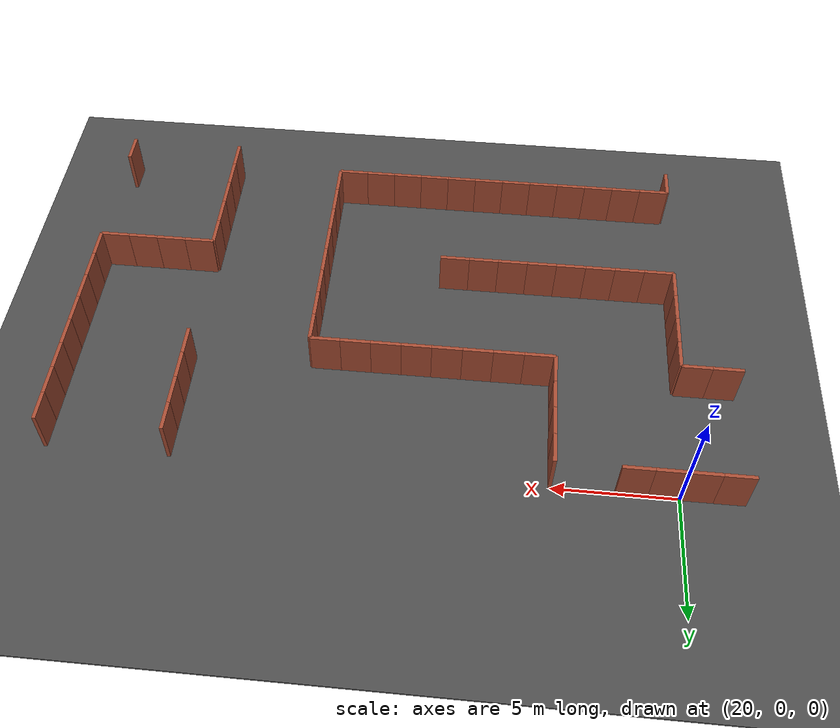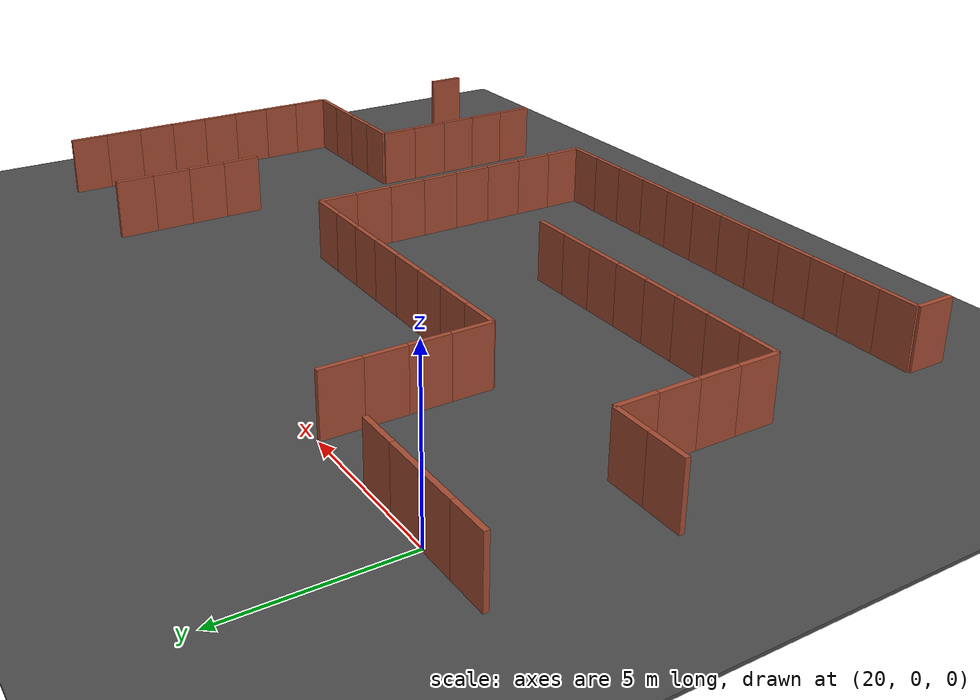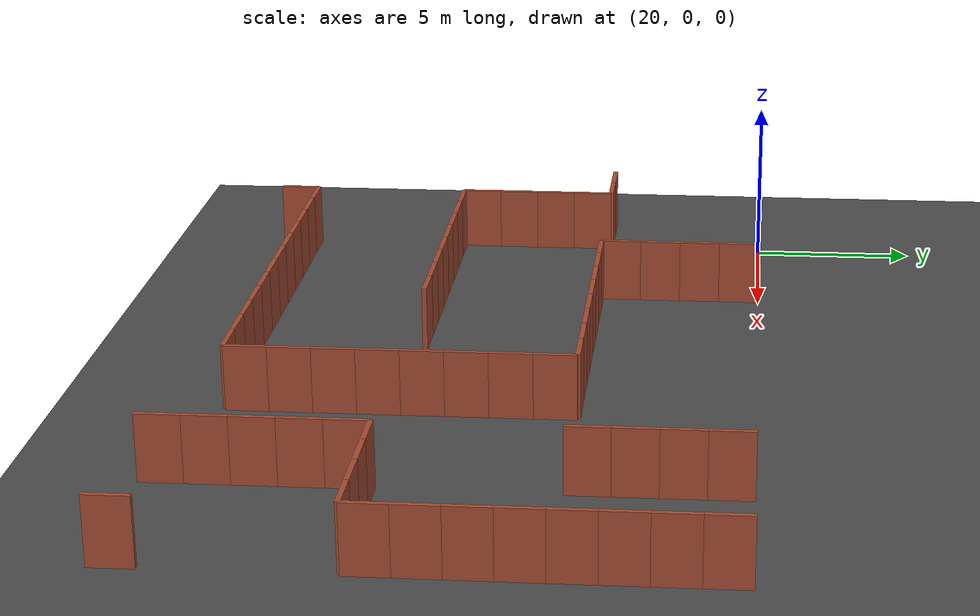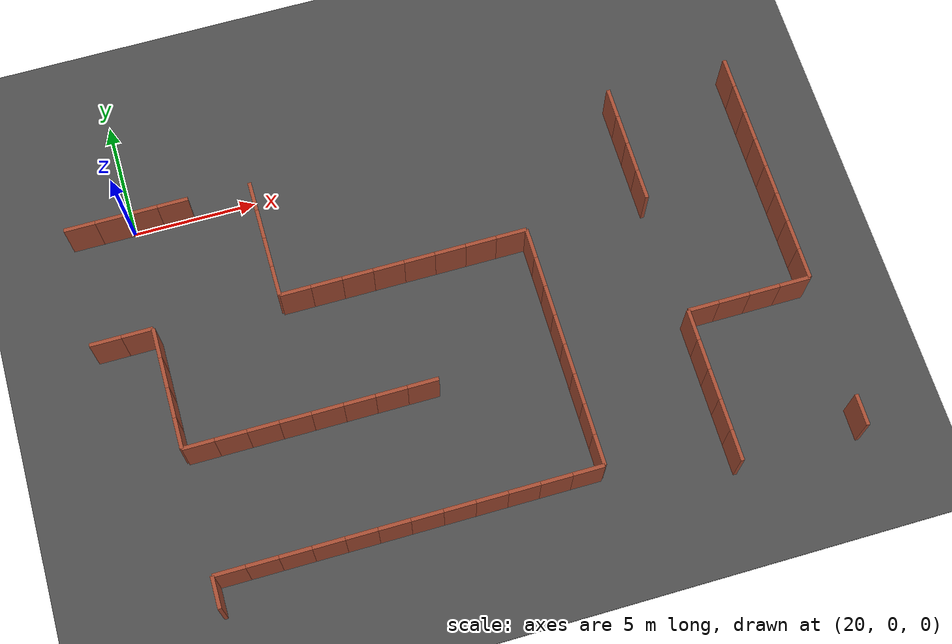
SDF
<sdf version="1.6">
 <world name="default">
  <model name="ground_plane">
   <static>1</static>
   <link name="link">
    <collision name="collision">
     <geometry><plane><normal>0 0 1</normal><size>100 100</size></plane></geometry>
     <surface><friction><ode><mu>100</mu><mu2>50</mu2></ode></friction></surface>
    </collision>
    <visual name="visual">
     <cast_shadows>0</cast_shadows>
     <geometry><plane><normal>0 0 1</normal><size>100 100</size></plane></geometry>
     <material>
      <script><uri>file://media/materials/scripts/gazebo.material</uri><name>Gazebo/Grey</name></script>
     </material>
    </visual>
   </link>
  </model>
  <model name="asphalt_plane">
   <static>1</static>
   <link name="link">
    <collision name="collision"><geometry><box><size>100 100 0.1</size></box></geometry></collision>
    <visual name="visual">
     <cast_shadows>0</cast_shadows>
     <geometry><box><size>100 100 0.1</size></box></geometry>
     <material>
      <script>
       <uri>model://asphalt_plane/materials/scripts</uri>
       <uri>model://asphalt_plane/materials/textures</uri>
       <name>vrc/asphalt</name>
      </script>
     </material>
    </visual>
   </link>
  </model>
  <model name="brick_wall_27_18_vertical1">
   <pose>18.125 -5 0 0 -0 0</pose>
   <link name="Wall_0">
    <collision name="Wall_0_Collision">
     <geometry><box><size>1.25 0.15 2</size></box></geometry>
     <pose>0 0 1 0 -0 0</pose>
    </collision>
    <visual name="Wall_0_Visual">
     <pose>0 0 1 0 -0 0</pose>
     <geometry><box><size>1.25 0.15 2</size></box></geometry>
     <material>
      <script><uri>file://media/materials/scripts/gazebo.material</uri><name>Gazebo/Bricks</name></script>
      <ambient>1 1 1 1</ambient>
     </material>
     <meta><layer>0</layer></meta>
    </visual>
   </link>
   <static>1</static>
  </model>
  <model name="brick_wall_27_20_vertical1">
   <pose>18.125 0 0 0 -0 0</pose>
   <link name="Wall_0">
    <collision name="Wall_0_Collision">
     <geometry><box><size>1.25 0.15 2</size></box></geometry>
     <pose>0 0 1 0 -0 0</pose>
    </collision>
    <visual name="Wall_0_Visual">
     <pose>0 0 1 0 -0 0</pose>
     <geometry><box><size>1.25 0.15 2</size></box></geometry>
     <material>
      <script><uri>file://media/materials/scripts/gazebo.material</uri><name>Gazebo/Bricks</name></script>
      <ambient>1 1 1 1</ambient>
     </material>
     <meta><layer>0</layer></meta>
    </visual>
   </link>
   <static>1</static>
  </model>
  <model name="brick_wall_28_14_vertical1">
   <pose>20.625 -15 0 0 -0 0</pose>
   <link name="Wall_0">
    <collision name="Wall_0_Collision">
     <geometry><box><size>1.25 0.15 2</size></box></geometry>
     <pose>0 0 1 0 -0 0</pose>
    </collision>
    <visual name="Wall_0_Visual">
     <pose>0 0 1 0 -0 0</pose>
     <geometry><box><size>1.25 0.15 2</size></box></geometry>
     <material>
      <script><uri>file://media/materials/scripts/gazebo.material</uri><name>Gazebo/Bricks</name></script>
      <ambient>1 1 1 1</ambient>
     </material>
     <meta><layer>0</layer></meta>
    </visual>
   </link>
   <static>1</static>
  </model>
  <model name="brick_wall_28_14_horizontal2">
   <pose>20 -15.625 0 0 -0 1.5708</pose>
   <link name="Wall_0">
    <collision name="Wall_0_Collision">
     <geometry><box><size>1.25 0.15 2</size></box></geometry>
     <pose>0 0 1 0 -0 0</pose>
    </collision>
    <visual name="Wall_0_Visual">
     <pose>0 0 1 0 -0 0</pose>
     <geometry><box><size>1.25 0.15 2</size></box></geometry>
     <material>
      <script><uri>file://media/materials/scripts/gazebo.material</uri><name>Gazebo/Bricks</name></script>
      <ambient>1 1 1 1</ambient>
     </material>
     <meta><layer>0</layer></meta>
    </visual>
   </link>
   <static>1</static>
  </model>
  <model name="brick_wall_28_16_vertical1">
   <pose>20.625 -10 0 0 -0 0</pose>
   <link name="Wall_0">
    <collision name="Wall_0_Collision">
     <geometry><box><size>1.25 0.15 2</size></box></geometry>
     <pose>0 0 1 0 -0 0</pose>
    </collision>
    <visual name="Wall_0_Visual">
     <pose>0 0 1 0 -0 0</pose>
     <geometry><box><size>1.25 0.15 2</size></box></geometry>
     <material>
      <script><uri>file://media/materials/scripts/gazebo.material</uri><name>Gazebo/Bricks</name></script>
      <ambient>1 1 1 1</ambient>
     </material>
     <meta><layer>0</layer></meta>
    </visual>
   </link>
   <static>1</static>
  </model>
  <model name="brick_wall_28_16_horizontal1">
   <pose>20 -9.375 0 0 -0 1.5708</pose>
   <link name="Wall_0">
    <collision name="Wall_0_Collision">
     <geometry><box><size>1.25 0.15 2</size></box></geometry>
     <pose>0 0 1 0 -0 0</pose>
    </collision>
    <visual name="Wall_0_Visual">
     <pose>0 0 1 0 -0 0</pose>
     <geometry><box><size>1.25 0.15 2</size></box></geometry>
     <material>
      <script><uri>file://media/materials/scripts/gazebo.material</uri><name>Gazebo/Bricks</name></script>
      <ambient>1 1 1 1</ambient>
     </material>
     <meta><layer>0</layer></meta>
    </visual>
   </link>
   <static>1</static>
  </model>
  <model name="brick_wall_28_17_horizontal1">
   <pose>20 -6.875 0 0 -0 1.5708</pose>
   <link name="Wall_0">
    <collision name="Wall_0_Collision">
     <geometry><box><size>1.25 0.15 2</size></box></geometry>
     <pose>0 0 1 0 -0 0</pose>
    </collision>
    <visual name="Wall_0_Visual">
     <pose>0 0 1 0 -0 0</pose>
     <geometry><box><size>1.25 0.15 2</size></box></geometry>
     <material>
      <script><uri>file://media/materials/scripts/gazebo.material</uri><name>Gazebo/Bricks</name></script>
      <ambient>1 1 1 1</ambient>
     </material>
     <meta><layer>0</layer></meta>
    </visual>
   </link>
   <static>1</static>
  </model>
  <model name="brick_wall_28_17_horizontal2">
   <pose>20 -8.125 0 0 -0 1.5708</pose>
   <link name="Wall_0">
    <collision name="Wall_0_Collision">
     <geometry><box><size>1.25 0.15 2</size></box></geometry>
     <pose>0 0 1 0 -0 0</pose>
    </collision>
    <visual name="Wall_0_Visual">
     <pose>0 0 1 0 -0 0</pose>
     <geometry><box><size>1.25 0.15 2</size></box></geometry>
     <material>
      <script><uri>file://media/materials/scripts/gazebo.material</uri><name>Gazebo/Bricks</name></script>
      <ambient>1 1 1 1</ambient>
     </material>
     <meta><layer>0</layer></meta>
    </visual>
   </link>
   <static>1</static>
  </model>
  <model name="brick_wall_28_18_vertical2">
   <pose>19.375 -5 0 0 -0 0</pose>
   <link name="Wall_0">
    <collision name="Wall_0_Collision">
     <geometry><box><size>1.25 0.15 2</size></box></geometry>
     <pose>0 0 1 0 -0 0</pose>
    </collision>
    <visual name="Wall_0_Visual">
     <pose>0 0 1 0 -0 0</pose>
     <geometry><box><size>1.25 0.15 2</size></box></geometry>
     <material>
      <script><uri>file://media/materials/scripts/gazebo.material</uri><name>Gazebo/Bricks</name></script>
      <ambient>1 1 1 1</ambient>
     </material>
     <meta><layer>0</layer></meta>
    </visual>
   </link>
   <static>1</static>
  </model>
  <model name="brick_wall_28_18_horizontal2">
   <pose>20 -5.625 0 0 -0 1.5708</pose>
   <link name="Wall_0">
    <collision name="Wall_0_Collision">
     <geometry><box><size>1.25 0.15 2</size></box></geometry>
     <pose>0 0 1 0 -0 0</pose>
    </collision>
    <visual name="Wall_0_Visual">
     <pose>0 0 1 0 -0 0</pose>
     <geometry><box><size>1.25 0.15 2</size></box></geometry>
     <material>
      <script><uri>file://media/materials/scripts/gazebo.material</uri><name>Gazebo/Bricks</name></script>
      <ambient>1 1 1 1</ambient>
     </material>
     <meta><layer>0</layer></meta>
    </visual>
   </link>
   <static>1</static>
  </model>
  <model name="brick_wall_28_20_vertical1">
   <pose>20.625 0 0 0 -0 0</pose>
   <link name="Wall_0">
    <collision name="Wall_0_Collision">
     <geometry><box><size>1.25 0.15 2</size></box></geometry>
     <pose>0 0 1 0 -0 0</pose>
    </collision>
    <visual name="Wall_0_Visual">
     <pose>0 0 1 0 -0 0</pose>
     <geometry><box><size>1.25 0.15 2</size></box></geometry>
     <material>
      <script><uri>file://media/materials/scripts/gazebo.material</uri><name>Gazebo/Bricks</name></script>
      <ambient>1 1 1 1</ambient>
     </material>
     <meta><layer>0</layer></meta>
    </visual>
   </link>
   <static>1</static>
  </model>
  <model name="brick_wall_28_20_vertical2">
   <pose>19.375 0 0 0 -0 0</pose>
   <link name="Wall_0">
    <collision name="Wall_0_Collision">
     <geometry><box><size>1.25 0.15 2</size></box></geometry>
     <pose>0 0 1 0 -0 0</pose>
    </collision>
    <visual name="Wall_0_Visual">
     <pose>0 0 1 0 -0 0</pose>
     <geometry><box><size>1.25 0.15 2</size></box></geometry>
     <material>
      <script><uri>file://media/materials/scripts/gazebo.material</uri><name>Gazebo/Bricks</name></script>
      <ambient>1 1 1 1</ambient>
     </material>
     <meta><layer>0</layer></meta>
    </visual>
   </link>
   <static>1</static>
  </model>
  <model name="brick_wall_29_14_vertical1">
   <pose>23.125 -15 0 0 -0 0</pose>
   <link name="Wall_0">
    <collision name="Wall_0_Collision">
     <geometry><box><size>1.25 0.15 2</size></box></geometry>
     <pose>0 0 1 0 -0 0</pose>
    </collision>
    <visual name="Wall_0_Visual">
     <pose>0 0 1 0 -0 0</pose>
     <geometry><box><size>1.25 0.15 2</size></box></geometry>
     <material>
      <script><uri>file://media/materials/scripts/gazebo.material</uri><name>Gazebo/Bricks</name></script>
      <ambient>1 1 1 1</ambient>
     </material>
     <meta><layer>0</layer></meta>
    </visual>
   </link>
   <static>1</static>
  </model>
  <model name="brick_wall_29_14_vertical2">
   <pose>21.875 -15 0 0 -0 0</pose>
   <link name="Wall_0">
    <collision name="Wall_0_Collision">
     <geometry><box><size>1.25 0.15 2</size></box></geometry>
     <pose>0 0 1 0 -0 0</pose>
    </collision>
    <visual name="Wall_0_Visual">
     <pose>0 0 1 0 -0 0</pose>
     <geometry><box><size>1.25 0.15 2</size></box></geometry>
     <material>
      <script><uri>file://media/materials/scripts/gazebo.material</uri><name>Gazebo/Bricks</name></script>
      <ambient>1 1 1 1</ambient>
     </material>
     <meta><layer>0</layer></meta>
    </visual>
   </link>
   <static>1</static>
  </model>
  <model name="brick_wall_29_16_vertical1">
   <pose>23.125 -10 0 0 -0 0</pose>
   <link name="Wall_0">
    <collision name="Wall_0_Collision">
     <geometry><box><size>1.25 0.15 2</size></box></geometry>
     <pose>0 0 1 0 -0 0</pose>
    </collision>
    <visual name="Wall_0_Visual">
     <pose>0 0 1 0 -0 0</pose>
     <geometry><box><size>1.25 0.15 2</size></box></geometry>
     <material>
      <script><uri>file://media/materials/scripts/gazebo.material</uri><name>Gazebo/Bricks</name></script>
      <ambient>1 1 1 1</ambient>
     </material>
     <meta><layer>0</layer></meta>
    </visual>
   </link>
   <static>1</static>
  </model>
  <model name="brick_wall_29_16_vertical2">
   <pose>21.875 -10 0 0 -0 0</pose>
   <link name="Wall_0">
    <collision name="Wall_0_Collision">
     <geometry><box><size>1.25 0.15 2</size></box></geometry>
     <pose>0 0 1 0 -0 0</pose>
    </collision>
    <visual name="Wall_0_Visual">
     <pose>0 0 1 0 -0 0</pose>
     <geometry><box><size>1.25 0.15 2</size></box></geometry>
     <material>
      <script><uri>file://media/materials/scripts/gazebo.material</uri><name>Gazebo/Bricks</name></script>
      <ambient>1 1 1 1</ambient>
     </material>
     <meta><layer>0</layer></meta>
    </visual>
   </link>
   <static>1</static>
  </model>
  <model name="brick_wall_29_20_vertical2">
   <pose>21.875 0 0 0 -0 0</pose>
   <link name="Wall_0">
    <collision name="Wall_0_Collision">
     <geometry><box><size>1.25 0.15 2</size></box></geometry>
     <pose>0 0 1 0 -0 0</pose>
    </collision>
    <visual name="Wall_0_Visual">
     <pose>0 0 1 0 -0 0</pose>
     <geometry><box><size>1.25 0.15 2</size></box></geometry>
     <material>
      <script><uri>file://media/materials/scripts/gazebo.material</uri><name>Gazebo/Bricks</name></script>
      <ambient>1 1 1 1</ambient>
     </material>
     <meta><layer>0</layer></meta>
    </visual>
   </link>
   <static>1</static>
  </model>
  <model name="brick_wall_30_14_vertical1">
   <pose>25.625 -15 0 0 -0 0</pose>
   <link name="Wall_0">
    <collision name="Wall_0_Collision">
     <geometry><box><size>1.25 0.15 2</size></box></geometry>
     <pose>0 0 1 0 -0 0</pose>
    </collision>
    <visual name="Wall_0_Visual">
     <pose>0 0 1 0 -0 0</pose>
     <geometry><box><size>1.25 0.15 2</size></box></geometry>
     <material>
      <script><uri>file://media/materials/scripts/gazebo.material</uri><name>Gazebo/Bricks</name></script>
      <ambient>1 1 1 1</ambient>
     </material>
     <meta><layer>0</layer></meta>
    </visual>
   </link>
   <static>1</static>
  </model>
  <model name="brick_wall_30_14_vertical2">
   <pose>24.375 -15 0 0 -0 0</pose>
   <link name="Wall_0">
    <collision name="Wall_0_Collision">
     <geometry><box><size>1.25 0.15 2</size></box></geometry>
     <pose>0 0 1 0 -0 0</pose>
    </collision>
    <visual name="Wall_0_Visual">
     <pose>0 0 1 0 -0 0</pose>
     <geometry><box><size>1.25 0.15 2</size></box></geometry>
     <material>
      <script><uri>file://media/materials/scripts/gazebo.material</uri><name>Gazebo/Bricks</name></script>
      <ambient>1 1 1 1</ambient>
     </material>
     <meta><layer>0</layer></meta>
    </visual>
   </link>
   <static>1</static>
  </model>
  <model name="brick_wall_30_16_vertical1">
   <pose>25.625 -10 0 0 -0 0</pose>
   <link name="Wall_0">
    <collision name="Wall_0_Collision">
     <geometry><box><size>1.25 0.15 2</size></box></geometry>
     <pose>0 0 1 0 -0 0</pose>
    </collision>
    <visual name="Wall_0_Visual">
     <pose>0 0 1 0 -0 0</pose>
     <geometry><box><size>1.25 0.15 2</size></box></geometry>
     <material>
      <script><uri>file://media/materials/scripts/gazebo.material</uri><name>Gazebo/Bricks</name></script>
      <ambient>1 1 1 1</ambient>
     </material>
     <meta><layer>0</layer></meta>
    </visual>
   </link>
   <static>1</static>
  </model>
  <model name="brick_wall_30_16_vertical2">
   <pose>24.375 -10 0 0 -0 0</pose>
   <link name="Wall_0">
    <collision name="Wall_0_Collision">
     <geometry><box><size>1.25 0.15 2</size></box></geometry>
     <pose>0 0 1 0 -0 0</pose>
    </collision>
    <visual name="Wall_0_Visual">
     <pose>0 0 1 0 -0 0</pose>
     <geometry><box><size>1.25 0.15 2</size></box></geometry>
     <material>
      <script><uri>file://media/materials/scripts/gazebo.material</uri><name>Gazebo/Bricks</name></script>
      <ambient>1 1 1 1</ambient>
     </material>
     <meta><layer>0</layer></meta>
    </visual>
   </link>
   <static>1</static>
  </model>
  <model name="brick_wall_30_18_vertical1">
   <pose>25.625 -5 0 0 -0 0</pose>
   <link name="Wall_0">
    <collision name="Wall_0_Collision">
     <geometry><box><size>1.25 0.15 2</size></box></geometry>
     <pose>0 0 1 0 -0 0</pose>
    </collision>
    <visual name="Wall_0_Visual">
     <pose>0 0 1 0 -0 0</pose>
     <geometry><box><size>1.25 0.15 2</size></box></geometry>
     <material>
      <script><uri>file://media/materials/scripts/gazebo.material</uri><name>Gazebo/Bricks</name></script>
      <ambient>1 1 1 1</ambient>
     </material>
     <meta><layer>0</layer></meta>
    </visual>
   </link>
   <static>1</static>
  </model>
  <model name="brick_wall_30_18_horizontal1">
   <pose>25 -4.375 0 0 -0 1.5708</pose>
   <link name="Wall_0">
    <collision name="Wall_0_Collision">
     <geometry><box><size>1.25 0.15 2</size></box></geometry>
     <pose>0 0 1 0 -0 0</pose>
    </collision>
    <visual name="Wall_0_Visual">
     <pose>0 0 1 0 -0 0</pose>
     <geometry><box><size>1.25 0.15 2</size></box></geometry>
     <material>
      <script><uri>file://media/materials/scripts/gazebo.material</uri><name>Gazebo/Bricks</name></script>
      <ambient>1 1 1 1</ambient>
     </material>
     <meta><layer>0</layer></meta>
    </visual>
   </link>
   <static>1</static>
  </model>
  <model name="brick_wall_30_19_horizontal1">
   <pose>25 -1.875 0 0 -0 1.5708</pose>
   <link name="Wall_0">
    <collision name="Wall_0_Collision">
     <geometry><box><size>1.25 0.15 2</size></box></geometry>
     <pose>0 0 1 0 -0 0</pose>
    </collision>
    <visual name="Wall_0_Visual">
     <pose>0 0 1 0 -0 0</pose>
     <geometry><box><size>1.25 0.15 2</size></box></geometry>
     <material>
      <script><uri>file://media/materials/scripts/gazebo.material</uri><name>Gazebo/Bricks</name></script>
      <ambient>1 1 1 1</ambient>
     </material>
     <meta><layer>0</layer></meta>
    </visual>
   </link>
   <static>1</static>
  </model>
  <model name="brick_wall_30_19_horizontal2">
   <pose>25 -3.125 0 0 -0 1.5708</pose>
   <link name="Wall_0">
    <collision name="Wall_0_Collision">
     <geometry><box><size>1.25 0.15 2</size></box></geometry>
     <pose>0 0 1 0 -0 0</pose>
    </collision>
    <visual name="Wall_0_Visual">
     <pose>0 0 1 0 -0 0</pose>
     <geometry><box><size>1.25 0.15 2</size></box></geometry>
     <material>
      <script><uri>file://media/materials/scripts/gazebo.material</uri><name>Gazebo/Bricks</name></script>
      <ambient>1 1 1 1</ambient>
     </material>
     <meta><layer>0</layer></meta>
    </visual>
   </link>
   <static>1</static>
  </model>
  <model name="brick_wall_30_20_horizontal2">
   <pose>25 -0.625 0 0 -0 1.5708</pose>
   <link name="Wall_0">
    <collision name="Wall_0_Collision">
     <geometry><box><size>1.25 0.15 2</size></box></geometry>
     <pose>0 0 1 0 -0 0</pose>
    </collision>
    <visual name="Wall_0_Visual">
     <pose>0 0 1 0 -0 0</pose>
     <geometry><box><size>1.25 0.15 2</size></box></geometry>
     <material>
      <script><uri>file://media/materials/scripts/gazebo.material</uri><name>Gazebo/Bricks</name></script>
      <ambient>1 1 1 1</ambient>
     </material>
     <meta><layer>0</layer></meta>
    </visual>
   </link>
   <static>1</static>
  </model>
  <model name="brick_wall_31_14_vertical1">
   <pose>28.125 -15 0 0 -0 0</pose>
   <link name="Wall_0">
    <collision name="Wall_0_Collision">
     <geometry><box><size>1.25 0.15 2</size></box></geometry>
     <pose>0 0 1 0 -0 0</pose>
    </collision>
    <visual name="Wall_0_Visual">
     <pose>0 0 1 0 -0 0</pose>
     <geometry><box><size>1.25 0.15 2</size></box></geometry>
     <material>
      <script><uri>file://media/materials/scripts/gazebo.material</uri><name>Gazebo/Bricks</name></script>
      <ambient>1 1 1 1</ambient>
     </material>
     <meta><layer>0</layer></meta>
    </visual>
   </link>
   <static>1</static>
  </model>
  <model name="brick_wall_31_14_vertical2">
   <pose>26.875 -15 0 0 -0 0</pose>
   <link name="Wall_0">
    <collision name="Wall_0_Collision">
     <geometry><box><size>1.25 0.15 2</size></box></geometry>
     <pose>0 0 1 0 -0 0</pose>
    </collision>
    <visual name="Wall_0_Visual">
     <pose>0 0 1 0 -0 0</pose>
     <geometry><box><size>1.25 0.15 2</size></box></geometry>
     <material>
      <script><uri>file://media/materials/scripts/gazebo.material</uri><name>Gazebo/Bricks</name></script>
      <ambient>1 1 1 1</ambient>
     </material>
     <meta><layer>0</layer></meta>
    </visual>
   </link>
   <static>1</static>
  </model>
  <model name="brick_wall_31_16_vertical1">
   <pose>28.125 -10 0 0 -0 0</pose>
   <link name="Wall_0">
    <collision name="Wall_0_Collision">
     <geometry><box><size>1.25 0.15 2</size></box></geometry>
     <pose>0 0 1 0 -0 0</pose>
    </collision>
    <visual name="Wall_0_Visual">
     <pose>0 0 1 0 -0 0</pose>
     <geometry><box><size>1.25 0.15 2</size></box></geometry>
     <material>
      <script><uri>file://media/materials/scripts/gazebo.material</uri><name>Gazebo/Bricks</name></script>
      <ambient>1 1 1 1</ambient>
     </material>
     <meta><layer>0</layer></meta>
    </visual>
   </link>
   <static>1</static>
  </model>
  <model name="brick_wall_31_16_vertical2">
   <pose>26.875 -10 0 0 -0 0</pose>
   <link name="Wall_0">
    <collision name="Wall_0_Collision">
     <geometry><box><size>1.25 0.15 2</size></box></geometry>
     <pose>0 0 1 0 -0 0</pose>
    </collision>
    <visual name="Wall_0_Visual">
     <pose>0 0 1 0 -0 0</pose>
     <geometry><box><size>1.25 0.15 2</size></box></geometry>
     <material>
      <script><uri>file://media/materials/scripts/gazebo.material</uri><name>Gazebo/Bricks</name></script>
      <ambient>1 1 1 1</ambient>
     </material>
     <meta><layer>0</layer></meta>
    </visual>
   </link>
   <static>1</static>
  </model>
  <model name="brick_wall_31_18_vertical1">
   <pose>28.125 -5 0 0 -0 0</pose>
   <link name="Wall_0">
    <collision name="Wall_0_Collision">
     <geometry><box><size>1.25 0.15 2</size></box></geometry>
     <pose>0 0 1 0 -0 0</pose>
    </collision>
    <visual name="Wall_0_Visual">
     <pose>0 0 1 0 -0 0</pose>
     <geometry><box><size>1.25 0.15 2</size></box></geometry>
     <material>
      <script><uri>file://media/materials/scripts/gazebo.material</uri><name>Gazebo/Bricks</name></script>
      <ambient>1 1 1 1</ambient>
     </material>
     <meta><layer>0</layer></meta>
    </visual>
   </link>
   <static>1</static>
  </model>
  <model name="brick_wall_31_18_vertical2">
   <pose>26.875 -5 0 0 -0 0</pose>
   <link name="Wall_0">
    <collision name="Wall_0_Collision">
     <geometry><box><size>1.25 0.15 2</size></box></geometry>
     <pose>0 0 1 0 -0 0</pose>
    </collision>
    <visual name="Wall_0_Visual">
     <pose>0 0 1 0 -0 0</pose>
     <geometry><box><size>1.25 0.15 2</size></box></geometry>
     <material>
      <script><uri>file://media/materials/scripts/gazebo.material</uri><name>Gazebo/Bricks</name></script>
      <ambient>1 1 1 1</ambient>
     </material>
     <meta><layer>0</layer></meta>
    </visual>
   </link>
   <static>1</static>
  </model>
  <model name="brick_wall_32_14_vertical1">
   <pose>30.625 -15 0 0 -0 0</pose>
   <link name="Wall_0">
    <collision name="Wall_0_Collision">
     <geometry><box><size>1.25 0.15 2</size></box></geometry>
     <pose>0 0 1 0 -0 0</pose>
    </collision>
    <visual name="Wall_0_Visual">
     <pose>0 0 1 0 -0 0</pose>
     <geometry><box><size>1.25 0.15 2</size></box></geometry>
     <material>
      <script><uri>file://media/materials/scripts/gazebo.material</uri><name>Gazebo/Bricks</name></script>
      <ambient>1 1 1 1</ambient>
     </material>
     <meta><layer>0</layer></meta>
    </visual>
   </link>
   <static>1</static>
  </model>
  <model name="brick_wall_32_14_vertical2">
   <pose>29.375 -15 0 0 -0 0</pose>
   <link name="Wall_0">
    <collision name="Wall_0_Collision">
     <geometry><box><size>1.25 0.15 2</size></box></geometry>
     <pose>0 0 1 0 -0 0</pose>
    </collision>
    <visual name="Wall_0_Visual">
     <pose>0 0 1 0 -0 0</pose>
     <geometry><box><size>1.25 0.15 2</size></box></geometry>
     <material>
      <script><uri>file://media/materials/scripts/gazebo.material</uri><name>Gazebo/Bricks</name></script>
      <ambient>1 1 1 1</ambient>
     </material>
     <meta><layer>0</layer></meta>
    </visual>
   </link>
   <static>1</static>
  </model>
  <model name="brick_wall_32_16_vertical2">
   <pose>29.375 -10 0 0 -0 0</pose>
   <link name="Wall_0">
    <collision name="Wall_0_Collision">
     <geometry><box><size>1.25 0.15 2</size></box></geometry>
     <pose>0 0 1 0 -0 0</pose>
    </collision>
    <visual name="Wall_0_Visual">
     <pose>0 0 1 0 -0 0</pose>
     <geometry><box><size>1.25 0.15 2</size></box></geometry>
     <material>
      <script><uri>file://media/materials/scripts/gazebo.material</uri><name>Gazebo/Bricks</name></script>
      <ambient>1 1 1 1</ambient>
     </material>
     <meta><layer>0</layer></meta>
    </visual>
   </link>
   <static>1</static>
  </model>
  <model name="brick_wall_32_18_vertical1">
   <pose>30.625 -5 0 0 -0 0</pose>
   <link name="Wall_0">
    <collision name="Wall_0_Collision">
     <geometry><box><size>1.25 0.15 2</size></box></geometry>
     <pose>0 0 1 0 -0 0</pose>
    </collision>
    <visual name="Wall_0_Visual">
     <pose>0 0 1 0 -0 0</pose>
     <geometry><box><size>1.25 0.15 2</size></box></geometry>
     <material>
      <script><uri>file://media/materials/scripts/gazebo.material</uri><name>Gazebo/Bricks</name></script>
      <ambient>1 1 1 1</ambient>
     </material>
     <meta><layer>0</layer></meta>
    </visual>
   </link>
   <static>1</static>
  </model>
  <model name="brick_wall_32_18_vertical2">
   <pose>29.375 -5 0 0 -0 0</pose>
   <link name="Wall_0">
    <collision name="Wall_0_Collision">
     <geometry><box><size>1.25 0.15 2</size></box></geometry>
     <pose>0 0 1 0 -0 0</pose>
    </collision>
    <visual name="Wall_0_Visual">
     <pose>0 0 1 0 -0 0</pose>
     <geometry><box><size>1.25 0.15 2</size></box></geometry>
     <material>
      <script><uri>file://media/materials/scripts/gazebo.material</uri><name>Gazebo/Bricks</name></script>
      <ambient>1 1 1 1</ambient>
     </material>
     <meta><layer>0</layer></meta>
    </visual>
   </link>
   <static>1</static>
  </model>
  <model name="brick_wall_33_14_vertical1">
   <pose>33.125 -15 0 0 -0 0</pose>
   <link name="Wall_0">
    <collision name="Wall_0_Collision">
     <geometry><box><size>1.25 0.15 2</size></box></geometry>
     <pose>0 0 1 0 -0 0</pose>
    </collision>
    <visual name="Wall_0_Visual">
     <pose>0 0 1 0 -0 0</pose>
     <geometry><box><size>1.25 0.15 2</size></box></geometry>
     <material>
      <script><uri>file://media/materials/scripts/gazebo.material</uri><name>Gazebo/Bricks</name></script>
      <ambient>1 1 1 1</ambient>
     </material>
     <meta><layer>0</layer></meta>
    </visual>
   </link>
   <static>1</static>
  </model>
  <model name="brick_wall_33_14_vertical2">
   <pose>31.875 -15 0 0 -0 0</pose>
   <link name="Wall_0">
    <collision name="Wall_0_Collision">
     <geometry><box><size>1.25 0.15 2</size></box></geometry>
     <pose>0 0 1 0 -0 0</pose>
    </collision>
    <visual name="Wall_0_Visual">
     <pose>0 0 1 0 -0 0</pose>
     <geometry><box><size>1.25 0.15 2</size></box></geometry>
     <material>
      <script><uri>file://media/materials/scripts/gazebo.material</uri><name>Gazebo/Bricks</name></script>
      <ambient>1 1 1 1</ambient>
     </material>
     <meta><layer>0</layer></meta>
    </visual>
   </link>
   <static>1</static>
  </model>
  <model name="brick_wall_33_18_vertical1">
   <pose>33.125 -5 0 0 -0 0</pose>
   <link name="Wall_0">
    <collision name="Wall_0_Collision">
     <geometry><box><size>1.25 0.15 2</size></box></geometry>
     <pose>0 0 1 0 -0 0</pose>
    </collision>
    <visual name="Wall_0_Visual">
     <pose>0 0 1 0 -0 0</pose>
     <geometry><box><size>1.25 0.15 2</size></box></geometry>
     <material>
      <script><uri>file://media/materials/scripts/gazebo.material</uri><name>Gazebo/Bricks</name></script>
      <ambient>1 1 1 1</ambient>
     </material>
     <meta><layer>0</layer></meta>
    </visual>
   </link>
   <static>1</static>
  </model>
  <model name="brick_wall_33_18_vertical2">
   <pose>31.875 -5 0 0 -0 0</pose>
   <link name="Wall_0">
    <collision name="Wall_0_Collision">
     <geometry><box><size>1.25 0.15 2</size></box></geometry>
     <pose>0 0 1 0 -0 0</pose>
    </collision>
    <visual name="Wall_0_Visual">
     <pose>0 0 1 0 -0 0</pose>
     <geometry><box><size>1.25 0.15 2</size></box></geometry>
     <material>
      <script><uri>file://media/materials/scripts/gazebo.material</uri><name>Gazebo/Bricks</name></script>
      <ambient>1 1 1 1</ambient>
     </material>
     <meta><layer>0</layer></meta>
    </visual>
   </link>
   <static>1</static>
  </model>
  <model name="brick_wall_34_14_vertical2">
   <pose>34.375 -15 0 0 -0 0</pose>
   <link name="Wall_0">
    <collision name="Wall_0_Collision">
     <geometry><box><size>1.25 0.15 2</size></box></geometry>
     <pose>0 0 1 0 -0 0</pose>
    </collision>
    <visual name="Wall_0_Visual">
     <pose>0 0 1 0 -0 0</pose>
     <geometry><box><size>1.25 0.15 2</size></box></geometry>
     <material>
      <script><uri>file://media/materials/scripts/gazebo.material</uri><name>Gazebo/Bricks</name></script>
      <ambient>1 1 1 1</ambient>
     </material>
     <meta><layer>0</layer></meta>
    </visual>
   </link>
   <static>1</static>
  </model>
  <model name="brick_wall_34_14_horizontal1">
   <pose>35 -14.375 0 0 -0 1.5708</pose>
   <link name="Wall_0">
    <collision name="Wall_0_Collision">
     <geometry><box><size>1.25 0.15 2</size></box></geometry>
     <pose>0 0 1 0 -0 0</pose>
    </collision>
    <visual name="Wall_0_Visual">
     <pose>0 0 1 0 -0 0</pose>
     <geometry><box><size>1.25 0.15 2</size></box></geometry>
     <material>
      <script><uri>file://media/materials/scripts/gazebo.material</uri><name>Gazebo/Bricks</name></script>
      <ambient>1 1 1 1</ambient>
     </material>
     <meta><layer>0</layer></meta>
    </visual>
   </link>
   <static>1</static>
  </model>
  <model name="brick_wall_34_15_horizontal1">
   <pose>35 -11.875 0 0 -0 1.5708</pose>
   <link name="Wall_0">
    <collision name="Wall_0_Collision">
     <geometry><box><size>1.25 0.15 2</size></box></geometry>
     <pose>0 0 1 0 -0 0</pose>
    </collision>
    <visual name="Wall_0_Visual">
     <pose>0 0 1 0 -0 0</pose>
     <geometry><box><size>1.25 0.15 2</size></box></geometry>
     <material>
      <script><uri>file://media/materials/scripts/gazebo.material</uri><name>Gazebo/Bricks</name></script>
      <ambient>1 1 1 1</ambient>
     </material>
     <meta><layer>0</layer></meta>
    </visual>
   </link>
   <static>1</static>
  </model>
  <model name="brick_wall_34_15_horizontal2">
   <pose>35 -13.125 0 0 -0 1.5708</pose>
   <link name="Wall_0">
    <collision name="Wall_0_Collision">
     <geometry><box><size>1.25 0.15 2</size></box></geometry>
     <pose>0 0 1 0 -0 0</pose>
    </collision>
    <visual name="Wall_0_Visual">
     <pose>0 0 1 0 -0 0</pose>
     <geometry><box><size>1.25 0.15 2</size></box></geometry>
     <material>
      <script><uri>file://media/materials/scripts/gazebo.material</uri><name>Gazebo/Bricks</name></script>
      <ambient>1 1 1 1</ambient>
     </material>
     <meta><layer>0</layer></meta>
    </visual>
   </link>
   <static>1</static>
  </model>
  <model name="brick_wall_34_16_horizontal1">
   <pose>35 -9.375 0 0 -0 1.5708</pose>
   <link name="Wall_0">
    <collision name="Wall_0_Collision">
     <geometry><box><size>1.25 0.15 2</size></box></geometry>
     <pose>0 0 1 0 -0 0</pose>
    </collision>
    <visual name="Wall_0_Visual">
     <pose>0 0 1 0 -0 0</pose>
     <geometry><box><size>1.25 0.15 2</size></box></geometry>
     <material>
      <script><uri>file://media/materials/scripts/gazebo.material</uri><name>Gazebo/Bricks</name></script>
      <ambient>1 1 1 1</ambient>
     </material>
     <meta><layer>0</layer></meta>
    </visual>
   </link>
   <static>1</static>
  </model>
  <model name="brick_wall_34_16_horizontal2">
   <pose>35 -10.625 0 0 -0 1.5708</pose>
   <link name="Wall_0">
    <collision name="Wall_0_Collision">
     <geometry><box><size>1.25 0.15 2</size></box></geometry>
     <pose>0 0 1 0 -0 0</pose>
    </collision>
    <visual name="Wall_0_Visual">
     <pose>0 0 1 0 -0 0</pose>
     <geometry><box><size>1.25 0.15 2</size></box></geometry>
     <material>
      <script><uri>file://media/materials/scripts/gazebo.material</uri><name>Gazebo/Bricks</name></script>
      <ambient>1 1 1 1</ambient>
     </material>
     <meta><layer>0</layer></meta>
    </visual>
   </link>
   <static>1</static>
  </model>
  <model name="brick_wall_34_17_horizontal1">
   <pose>35 -6.875 0 0 -0 1.5708</pose>
   <link name="Wall_0">
    <collision name="Wall_0_Collision">
     <geometry><box><size>1.25 0.15 2</size></box></geometry>
     <pose>0 0 1 0 -0 0</pose>
    </collision>
    <visual name="Wall_0_Visual">
     <pose>0 0 1 0 -0 0</pose>
     <geometry><box><size>1.25 0.15 2</size></box></geometry>
     <material>
      <script><uri>file://media/materials/scripts/gazebo.material</uri><name>Gazebo/Bricks</name></script>
      <ambient>1 1 1 1</ambient>
     </material>
     <meta><layer>0</layer></meta>
    </visual>
   </link>
   <static>1</static>
  </model>
  <model name="brick_wall_34_17_horizontal2">
   <pose>35 -8.125 0 0 -0 1.5708</pose>
   <link name="Wall_0">
    <collision name="Wall_0_Collision">
     <geometry><box><size>1.25 0.15 2</size></box></geometry>
     <pose>0 0 1 0 -0 0</pose>
    </collision>
    <visual name="Wall_0_Visual">
     <pose>0 0 1 0 -0 0</pose>
     <geometry><box><size>1.25 0.15 2</size></box></geometry>
     <material>
      <script><uri>file://media/materials/scripts/gazebo.material</uri><name>Gazebo/Bricks</name></script>
      <ambient>1 1 1 1</ambient>
     </material>
     <meta><layer>0</layer></meta>
    </visual>
   </link>
   <static>1</static>
  </model>
  <model name="brick_wall_34_18_vertical2">
   <pose>34.375 -5 0 0 -0 0</pose>
   <link name="Wall_0">
    <collision name="Wall_0_Collision">
     <geometry><box><size>1.25 0.15 2</size></box></geometry>
     <pose>0 0 1 0 -0 0</pose>
    </collision>
    <visual name="Wall_0_Visual">
     <pose>0 0 1 0 -0 0</pose>
     <geometry><box><size>1.25 0.15 2</size></box></geometry>
     <material>
      <script><uri>file://media/materials/scripts/gazebo.material</uri><name>Gazebo/Bricks</name></script>
      <ambient>1 1 1 1</ambient>
     </material>
     <meta><layer>0</layer></meta>
    </visual>
   </link>
   <static>1</static>
  </model>
  <model name="brick_wall_34_18_horizontal2">
   <pose>35 -5.625 0 0 -0 1.5708</pose>
   <link name="Wall_0">
    <collision name="Wall_0_Collision">
     <geometry><box><size>1.25 0.15 2</size></box></geometry>
     <pose>0 0 1 0 -0 0</pose>
    </collision>
    <visual name="Wall_0_Visual">
     <pose>0 0 1 0 -0 0</pose>
     <geometry><box><size>1.25 0.15 2</size></box></geometry>
     <material>
      <script><uri>file://media/materials/scripts/gazebo.material</uri><name>Gazebo/Bricks</name></script>
      <ambient>1 1 1 1</ambient>
     </material>
     <meta><layer>0</layer></meta>
    </visual>
   </link>
   <static>1</static>
  </model>
  <model name="brick_wall_36_14_horizontal1">
   <pose>40 -14.375 0 0 -0 1.5708</pose>
   <link name="Wall_0">
    <collision name="Wall_0_Collision">
     <geometry><box><size>1.25 0.15 2</size></box></geometry>
     <pose>0 0 1 0 -0 0</pose>
    </collision>
    <visual name="Wall_0_Visual">
     <pose>0 0 1 0 -0 0</pose>
     <geometry><box><size>1.25 0.15 2</size></box></geometry>
     <material>
      <script><uri>file://media/materials/scripts/gazebo.material</uri><name>Gazebo/Bricks</name></script>
      <ambient>1 1 1 1</ambient>
     </material>
     <meta><layer>0</layer></meta>
    </visual>
   </link>
   <static>1</static>
  </model>
  <model name="brick_wall_36_14_horizontal2">
   <pose>40 -15.625 0 0 -0 1.5708</pose>
   <link name="Wall_0">
    <collision name="Wall_0_Collision">
     <geometry><box><size>1.25 0.15 2</size></box></geometry>
     <pose>0 0 1 0 -0 0</pose>
    </collision>
    <visual name="Wall_0_Visual">
     <pose>0 0 1 0 -0 0</pose>
     <geometry><box><size>1.25 0.15 2</size></box></geometry>
     <material>
      <script><uri>file://media/materials/scripts/gazebo.material</uri><name>Gazebo/Bricks</name></script>
      <ambient>1 1 1 1</ambient>
     </material>
     <meta><layer>0</layer></meta>
    </visual>
   </link>
   <static>1</static>
  </model>
  <model name="brick_wall_36_15_horizontal1">
   <pose>40 -11.875 0 0 -0 1.5708</pose>
   <link name="Wall_0">
    <collision name="Wall_0_Collision">
     <geometry><box><size>1.25 0.15 2</size></box></geometry>
     <pose>0 0 1 0 -0 0</pose>
    </collision>
    <visual name="Wall_0_Visual">
     <pose>0 0 1 0 -0 0</pose>
     <geometry><box><size>1.25 0.15 2</size></box></geometry>
     <material>
      <script><uri>file://media/materials/scripts/gazebo.material</uri><name>Gazebo/Bricks</name></script>
      <ambient>1 1 1 1</ambient>
     </material>
     <meta><layer>0</layer></meta>
    </visual>
   </link>
   <static>1</static>
  </model>
  <model name="brick_wall_36_15_horizontal2">
   <pose>40 -13.125 0 0 -0 1.5708</pose>
   <link name="Wall_0">
    <collision name="Wall_0_Collision">
     <geometry><box><size>1.25 0.15 2</size></box></geometry>
     <pose>0 0 1 0 -0 0</pose>
    </collision>
    <visual name="Wall_0_Visual">
     <pose>0 0 1 0 -0 0</pose>
     <geometry><box><size>1.25 0.15 2</size></box></geometry>
     <material>
      <script><uri>file://media/materials/scripts/gazebo.material</uri><name>Gazebo/Bricks</name></script>
      <ambient>1 1 1 1</ambient>
     </material>
     <meta><layer>0</layer></meta>
    </visual>
   </link>
   <static>1</static>
  </model>
  <model name="brick_wall_36_16_vertical1">
   <pose>40.625 -10 0 0 -0 0</pose>
   <link name="Wall_0">
    <collision name="Wall_0_Collision">
     <geometry><box><size>1.25 0.15 2</size></box></geometry>
     <pose>0 0 1 0 -0 0</pose>
    </collision>
    <visual name="Wall_0_Visual">
     <pose>0 0 1 0 -0 0</pose>
     <geometry><box><size>1.25 0.15 2</size></box></geometry>
     <material>
      <script><uri>file://media/materials/scripts/gazebo.material</uri><name>Gazebo/Bricks</name></script>
      <ambient>1 1 1 1</ambient>
     </material>
     <meta><layer>0</layer></meta>
    </visual>
   </link>
   <static>1</static>
  </model>
  <model name="brick_wall_36_16_horizontal2">
   <pose>40 -10.625 0 0 -0 1.5708</pose>
   <link name="Wall_0">
    <collision name="Wall_0_Collision">
     <geometry><box><size>1.25 0.15 2</size></box></geometry>
     <pose>0 0 1 0 -0 0</pose>
    </collision>
    <visual name="Wall_0_Visual">
     <pose>0 0 1 0 -0 0</pose>
     <geometry><box><size>1.25 0.15 2</size></box></geometry>
     <material>
      <script><uri>file://media/materials/scripts/gazebo.material</uri><name>Gazebo/Bricks</name></script>
      <ambient>1 1 1 1</ambient>
     </material>
     <meta><layer>0</layer></meta>
    </visual>
   </link>
   <static>1</static>
  </model>
  <model name="brick_wall_36_18_horizontal1">
   <pose>40 -4.375 0 0 -0 1.5708</pose>
   <link name="Wall_0">
    <collision name="Wall_0_Collision">
     <geometry><box><size>1.25 0.15 2</size></box></geometry>
     <pose>0 0 1 0 -0 0</pose>
    </collision>
    <visual name="Wall_0_Visual">
     <pose>0 0 1 0 -0 0</pose>
     <geometry><box><size>1.25 0.15 2</size></box></geometry>
     <material>
      <script><uri>file://media/materials/scripts/gazebo.material</uri><name>Gazebo/Bricks</name></script>
      <ambient>1 1 1 1</ambient>
     </material>
     <meta><layer>0</layer></meta>
    </visual>
   </link>
   <static>1</static>
  </model>
  <model name="brick_wall_36_19_horizontal1">
   <pose>40 -1.875 0 0 -0 1.5708</pose>
   <link name="Wall_0">
    <collision name="Wall_0_Collision">
     <geometry><box><size>1.25 0.15 2</size></box></geometry>
     <pose>0 0 1 0 -0 0</pose>
    </collision>
    <visual name="Wall_0_Visual">
     <pose>0 0 1 0 -0 0</pose>
     <geometry><box><size>1.25 0.15 2</size></box></geometry>
     <material>
      <script><uri>file://media/materials/scripts/gazebo.material</uri><name>Gazebo/Bricks</name></script>
      <ambient>1 1 1 1</ambient>
     </material>
     <meta><layer>0</layer></meta>
    </visual>
   </link>
   <static>1</static>
  </model>
  <model name="brick_wall_36_19_horizontal2">
   <pose>40 -3.125 0 0 -0 1.5708</pose>
   <link name="Wall_0">
    <collision name="Wall_0_Collision">
     <geometry><box><size>1.25 0.15 2</size></box></geometry>
     <pose>0 0 1 0 -0 0</pose>
    </collision>
    <visual name="Wall_0_Visual">
     <pose>0 0 1 0 -0 0</pose>
     <geometry><box><size>1.25 0.15 2</size></box></geometry>
     <material>
      <script><uri>file://media/materials/scripts/gazebo.material</uri><name>Gazebo/Bricks</name></script>
      <ambient>1 1 1 1</ambient>
     </material>
     <meta><layer>0</layer></meta>
    </visual>
   </link>
   <static>1</static>
  </model>
  <model name="brick_wall_36_20_horizontal2">
   <pose>40 -0.625 0 0 -0 1.5708</pose>
   <link name="Wall_0">
    <collision name="Wall_0_Collision">
     <geometry><box><size>1.25 0.15 2</size></box></geometry>
     <pose>0 0 1 0 -0 0</pose>
    </collision>
    <visual name="Wall_0_Visual">
     <pose>0 0 1 0 -0 0</pose>
     <geometry><box><size>1.25 0.15 2</size></box></geometry>
     <material>
      <script><uri>file://media/materials/scripts/gazebo.material</uri><name>Gazebo/Bricks</name></script>
      <ambient>1 1 1 1</ambient>
     </material>
     <meta><layer>0</layer></meta>
    </visual>
   </link>
   <static>1</static>
  </model>
  <model name="brick_wall_37_16_vertical1">
   <pose>43.125 -10 0 0 -0 0</pose>
   <link name="Wall_0">
    <collision name="Wall_0_Collision">
     <geometry><box><size>1.25 0.15 2</size></box></geometry>
     <pose>0 0 1 0 -0 0</pose>
    </collision>
    <visual name="Wall_0_Visual">
     <pose>0 0 1 0 -0 0</pose>
     <geometry><box><size>1.25 0.15 2</size></box></geometry>
     <material>
      <script><uri>file://media/materials/scripts/gazebo.material</uri><name>Gazebo/Bricks</name></script>
      <ambient>1 1 1 1</ambient>
     </material>
     <meta><layer>0</layer></meta>
    </visual>
   </link>
   <static>1</static>
  </model>
  <model name="brick_wall_37_16_vertical2">
   <pose>41.875 -10 0 0 -0 0</pose>
   <link name="Wall_0">
    <collision name="Wall_0_Collision">
     <geometry><box><size>1.25 0.15 2</size></box></geometry>
     <pose>0 0 1 0 -0 0</pose>
    </collision>
    <visual name="Wall_0_Visual">
     <pose>0 0 1 0 -0 0</pose>
     <geometry><box><size>1.25 0.15 2</size></box></geometry>
     <material>
      <script><uri>file://media/materials/scripts/gazebo.material</uri><name>Gazebo/Bricks</name></script>
      <ambient>1 1 1 1</ambient>
     </material>
     <meta><layer>0</layer></meta>
    </visual>
   </link>
   <static>1</static>
  </model>
  <model name="brick_wall_38_14_horizontal2">
   <pose>45 -15.625 0 0 -0 1.5708</pose>
   <link name="Wall_0">
    <collision name="Wall_0_Collision">
     <geometry><box><size>1.25 0.15 2</size></box></geometry>
     <pose>0 0 1 0 -0 0</pose>
    </collision>
    <visual name="Wall_0_Visual">
     <pose>0 0 1 0 -0 0</pose>
     <geometry><box><size>1.25 0.15 2</size></box></geometry>
     <material>
      <script><uri>file://media/materials/scripts/gazebo.material</uri><name>Gazebo/Bricks</name></script>
      <ambient>1 1 1 1</ambient>
     </material>
     <meta><layer>0</layer></meta>
    </visual>
   </link>
   <static>1</static>
  </model>
  <model name="brick_wall_38_16_vertical2">
   <pose>44.375 -10 0 0 -0 0</pose>
   <link name="Wall_0">
    <collision name="Wall_0_Collision">
     <geometry><box><size>1.25 0.15 2</size></box></geometry>
     <pose>0 0 1 0 -0 0</pose>
    </collision>
    <visual name="Wall_0_Visual">
     <pose>0 0 1 0 -0 0</pose>
     <geometry><box><size>1.25 0.15 2</size></box></geometry>
     <material>
      <script><uri>file://media/materials/scripts/gazebo.material</uri><name>Gazebo/Bricks</name></script>
      <ambient>1 1 1 1</ambient>
     </material>
     <meta><layer>0</layer></meta>
    </visual>
   </link>
   <static>1</static>
  </model>
  <model name="brick_wall_38_16_horizontal1">
   <pose>45 -9.375 0 0 -0 1.5708</pose>
   <link name="Wall_0">
    <collision name="Wall_0_Collision">
     <geometry><box><size>1.25 0.15 2</size></box></geometry>
     <pose>0 0 1 0 -0 0</pose>
    </collision>
    <visual name="Wall_0_Visual">
     <pose>0 0 1 0 -0 0</pose>
     <geometry><box><size>1.25 0.15 2</size></box></geometry>
     <material>
      <script><uri>file://media/materials/scripts/gazebo.material</uri><name>Gazebo/Bricks</name></script>
      <ambient>1 1 1 1</ambient>
     </material>
     <meta><layer>0</layer></meta>
    </visual>
   </link>
   <static>1</static>
  </model>
  <model name="brick_wall_38_17_horizontal1">
   <pose>45 -6.875 0 0 -0 1.5708</pose>
   <link name="Wall_0">
    <collision name="Wall_0_Collision">
     <geometry><box><size>1.25 0.15 2</size></box></geometry>
     <pose>0 0 1 0 -0 0</pose>
    </collision>
    <visual name="Wall_0_Visual">
     <pose>0 0 1 0 -0 0</pose>
     <geometry><box><size>1.25 0.15 2</size></box></geometry>
     <material>
      <script><uri>file://media/materials/scripts/gazebo.material</uri><name>Gazebo/Bricks</name></script>
      <ambient>1 1 1 1</ambient>
     </material>
     <meta><layer>0</layer></meta>
    </visual>
   </link>
   <static>1</static>
  </model>
  <model name="brick_wall_38_17_horizontal2">
   <pose>45 -8.125 0 0 -0 1.5708</pose>
   <link name="Wall_0">
    <collision name="Wall_0_Collision">
     <geometry><box><size>1.25 0.15 2</size></box></geometry>
     <pose>0 0 1 0 -0 0</pose>
    </collision>
    <visual name="Wall_0_Visual">
     <pose>0 0 1 0 -0 0</pose>
     <geometry><box><size>1.25 0.15 2</size></box></geometry>
     <material>
      <script><uri>file://media/materials/scripts/gazebo.material</uri><name>Gazebo/Bricks</name></script>
      <ambient>1 1 1 1</ambient>
     </material>
     <meta><layer>0</layer></meta>
    </visual>
   </link>
   <static>1</static>
  </model>
  <model name="brick_wall_38_18_horizontal1">
   <pose>45 -4.375 0 0 -0 1.5708</pose>
   <link name="Wall_0">
    <collision name="Wall_0_Collision">
     <geometry><box><size>1.25 0.15 2</size></box></geometry>
     <pose>0 0 1 0 -0 0</pose>
    </collision>
    <visual name="Wall_0_Visual">
     <pose>0 0 1 0 -0 0</pose>
     <geometry><box><size>1.25 0.15 2</size></box></geometry>
     <material>
      <script><uri>file://media/materials/scripts/gazebo.material</uri><name>Gazebo/Bricks</name></script>
      <ambient>1 1 1 1</ambient>
     </material>
     <meta><layer>0</layer></meta>
    </visual>
   </link>
   <static>1</static>
  </model>
  <model name="brick_wall_38_18_horizontal2">
   <pose>45 -5.625 0 0 -0 1.5708</pose>
   <link name="Wall_0">
    <collision name="Wall_0_Collision">
     <geometry><box><size>1.25 0.15 2</size></box></geometry>
     <pose>0 0 1 0 -0 0</pose>
    </collision>
    <visual name="Wall_0_Visual">
     <pose>0 0 1 0 -0 0</pose>
     <geometry><box><size>1.25 0.15 2</size></box></geometry>
     <material>
      <script><uri>file://media/materials/scripts/gazebo.material</uri><name>Gazebo/Bricks</name></script>
      <ambient>1 1 1 1</ambient>
     </material>
     <meta><layer>0</layer></meta>
    </visual>
   </link>
   <static>1</static>
  </model>
  <model name="brick_wall_38_19_horizontal1">
   <pose>45 -1.875 0 0 -0 1.5708</pose>
   <link name="Wall_0">
    <collision name="Wall_0_Collision">
     <geometry><box><size>1.25 0.15 2</size></box></geometry>
     <pose>0 0 1 0 -0 0</pose>
    </collision>
    <visual name="Wall_0_Visual">
     <pose>0 0 1 0 -0 0</pose>
     <geometry><box><size>1.25 0.15 2</size></box></geometry>
     <material>
      <script><uri>file://media/materials/scripts/gazebo.material</uri><name>Gazebo/Bricks</name></script>
      <ambient>1 1 1 1</ambient>
     </material>
     <meta><layer>0</layer></meta>
    </visual>
   </link>
   <static>1</static>
  </model>
  <model name="brick_wall_38_19_horizontal2">
   <pose>45 -3.125 0 0 -0 1.5708</pose>
   <link name="Wall_0">
    <collision name="Wall_0_Collision">
     <geometry><box><size>1.25 0.15 2</size></box></geometry>
     <pose>0 0 1 0 -0 0</pose>
    </collision>
    <visual name="Wall_0_Visual">
     <pose>0 0 1 0 -0 0</pose>
     <geometry><box><size>1.25 0.15 2</size></box></geometry>
     <material>
      <script><uri>file://media/materials/scripts/gazebo.material</uri><name>Gazebo/Bricks</name></script>
      <ambient>1 1 1 1</ambient>
     </material>
     <meta><layer>0</layer></meta>
    </visual>
   </link>
   <static>1</static>
  </model>
  <model name="brick_wall_38_20_horizontal2">
   <pose>45 -0.625 0 0 -0 1.5708</pose>
   <link name="Wall_0">
    <collision name="Wall_0_Collision">
     <geometry><box><size>1.25 0.15 2</size></box></geometry>
     <pose>0 0 1 0 -0 0</pose>
    </collision>
    <visual name="Wall_0_Visual">
     <pose>0 0 1 0 -0 0</pose>
     <geometry><box><size>1.25 0.15 2</size></box></geometry>
     <material>
      <script><uri>file://media/materials/scripts/gazebo.material</uri><name>Gazebo/Bricks</name></script>
      <ambient>1 1 1 1</ambient>
     </material>
     <meta><layer>0</layer></meta>
    </visual>
   </link>
   <static>1</static>
  </model>
 </world>
</sdf>
